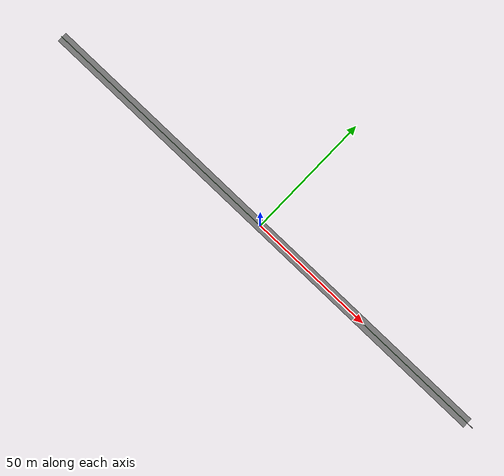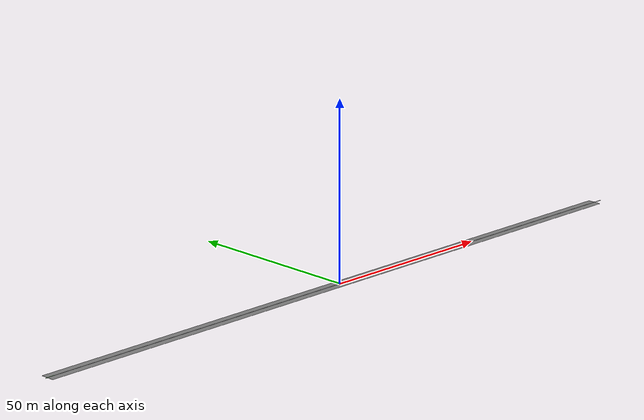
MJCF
<mujoco model="golf_world">
  <compiler angle="degree"/>
  <option timestep="0.002" gravity="0 0 -9.81" integrator="RK4" cone="elliptic"/>

  <!-- Defaults: enable 6D friction and make contacts crisp  friction="0.735084  1.83703e-05 0.000845"-->
  <default>
    <geom condim="6" solref="0.002 1" solimp="0.95 0.99 0.001" friction="0.30831  1.83703e-05 0.00081743"/>
  </default>
  <asset>
    <!-- Materials -->
    <material name="green_mat"     rgba="0.2 0.55 0.2 1"/>
    <material name="green_mat_out" rgba="0.5 0.5 0.5 1"/>
    <material name="cup_mat"       rgba="0.3 0.3 0.3 1"/>
    <texture  name ="checks" type="2d" builtin="checker" width="512" height="512"
              rgb1="1 1 1" rgb2="0 0 0" mark="cross" markrgb="1 0 0"/>
    <material name="ball_mat"  texture="checks" rgba="1 1 1 1"/>
    <material name="club_mat"  rgba="0.9 0.9 0.9 1"/>

  </asset>

  <!-- Contacts -->
  <contact>
    <pair geom1="ball_geom" geom2="club_head" solref="0.018456653624695597 0.2831490055941693" solimp="0.7837685139716153 1.11639 0.00107829"/>
  </contact>

  <worldbody>
    <!-- ==== GROUND: 6x4 m area, 0.04 m thick, with a 0.106 m opening at (2, 0) ==== -->
    <!-- Top slab (y in [ +0.053, +2 ]) -->
    <geom name="green_top" type="box"
          pos="0 1.0265 -0.02" size="100.0 0.9735 0.02"
          material="green_mat_out"/>

    <!-- Bottom slab (y in [ -2, -0.053 ]) -->
    <geom name="green_bottom" type="box"
          pos="0 -1.0265 -0.02" size="100.0 0.9735 0.02"
          material="green_mat_out"/>

    <!-- Left slab (x in [ -3, 1.947 ]) material="green_mat" -->
    <geom name="green_left" type="box"
          pos="-0.5265 0 -0.02" size="100 0.08 0.02"
          material="green_mat"/>

    <!-- Right slab (x in [ 2.053, 3 ]) -->
    <geom name="green_right" type="box"
          pos="2.5265 0 -0.02" size="100 0.08 0.02"
          material="green_mat_out"/>

    <!-- ==== BALL ==== -->
    <camera name="overview" pos="2.0 -3.0 1.5" quat="0.7 0.0 0.7 0.0" fovy="45"/>
    <body name="ball" pos="0 0 0.02135">
      <freejoint name="ball_free"/>
      <geom name="ball_geom" type="sphere" size="0.02135"
            rgba="0.6 0.2 0.6 1" mass="0.04593" material="ball_mat"
            condim="6"/>
    </body>

    <!-- ==== CLUB ==== -->
    <body name="club_mount" pos="0 0 0">
      <joint name="mount_free" type="free" damping="20"/>
      <geom name="mount_inert" type="sphere" size="0.10" mass="5.0"
            rgba="0 0 0 0" contype="0" conaffinity="0"/>

      <body name="club_offset" pos="-0.03 0.05 0.37865">
        <body name="club_link" pos="0 0 0">
          <joint name="club_hinge" type="hinge" axis="0 1 0" limited="true" range="-60 60" damping="0.003"/>
          <geom name="club_shaft" type="capsule" fromto="0 0 0  0 0 -0.36" size="0.01" mass="1.0" material="club_mat"/>
          <geom name="club_head"  type="box"    pos="0.0 -0.05 -0.36" size="0.02 0.05 0.03" mass="0.5" material="club_mat"/>
        </body>
      </body>
    </body>
  </worldbody>

  <!-- ==== ACTUATOR ==== -->
  <actuator>
    <velocity name="club_motor" joint="club_hinge"
              kv="20" ctrlrange="-20 20" forcerange="-40 40"/>
  </actuator>
</mujoco>
